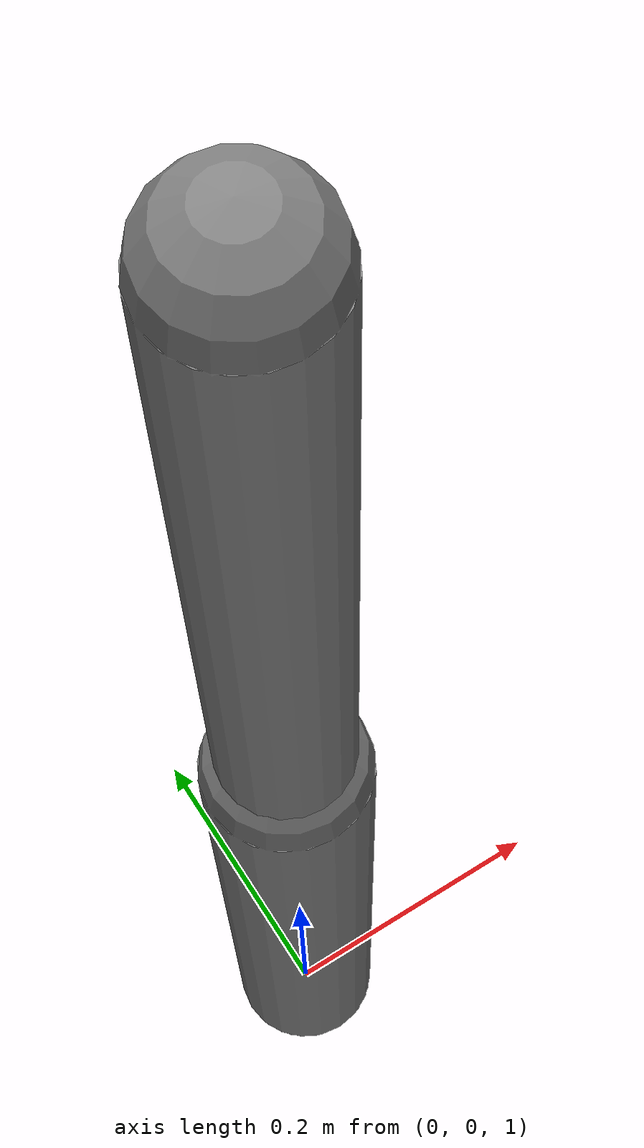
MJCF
<mujoco model="two_link_arm">
                <compiler angle="radian"/>
                <option timestep="0.002" integrator="RK4"/>
                <worldbody>
                    <body name="link1" pos="0 0 1">
                        <inertial pos="0 0 0.25" mass="1.0" diaginertia="0.01 0.01 0.001"/>
                        <geom type="capsule" size="0.05" fromto="0 0 0 0 0 0.5"/>
                        <joint name="shoulder" type="hinge" axis="1 0 0" range="-3.14 3.14"/>
                        <body name="link2" pos="0 0 0.5">
                            <inertial pos="0 0 0.25" mass="0.5" diaginertia="0.005 0.005 0.0005"/>
                            <geom type="capsule" size="0.04" fromto="0 0 0 0 0 0.5"/>
                            <joint name="elbow" type="hinge" axis="1 0 0" range="0 2.5"/>
                        </body>
                    </body>
                </worldbody>
                <actuator>
                    <motor name="shoulder_motor" joint="shoulder" gear="100"/>
                    <motor name="elbow_motor" joint="elbow" gear="50"/>
                </actuator>
            </mujoco>
